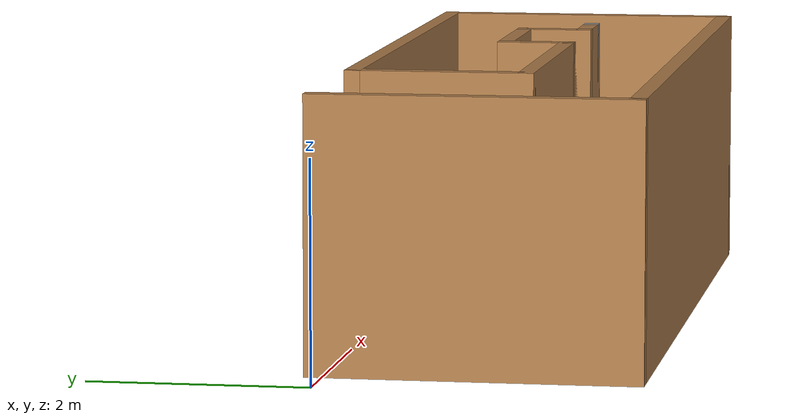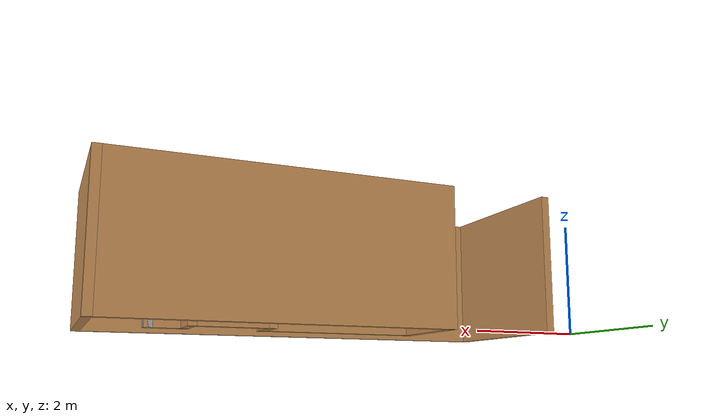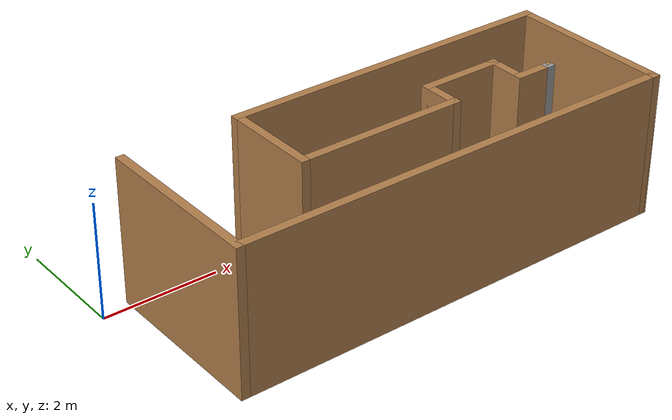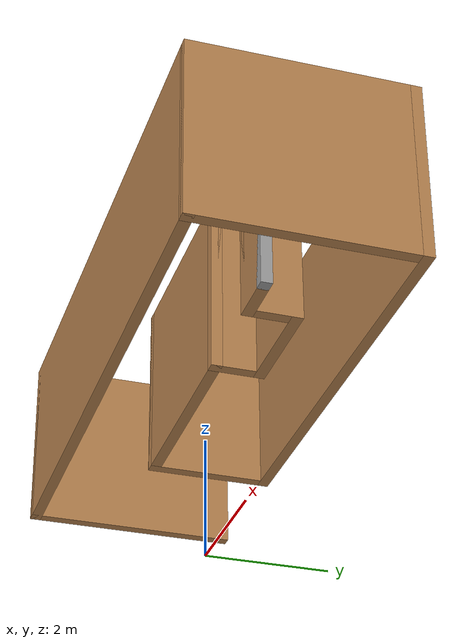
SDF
<?xml version='1.0'?>
<sdf version='1.7'>
  <model name='assignment_model'>
    <pose>4.24676 -1.34013 0 0 -0 0</pose>
    <link name='Wall_10'>
      <collision name='Wall_10_Collision'>
        <geometry>
          <box>
            <size>6 0.15 2.5</size>
          </box>
        </geometry>
        <pose>0 0 1.25 0 -0 0</pose>
      </collision>
      <visual name='Wall_10_Visual'>
        <pose>0 0 1.25 0 -0 0</pose>
        <geometry>
          <box>
            <size>6 0.15 2.5</size>
          </box>
        </geometry>
        <material>
          <script>
            <uri>file://media/materials/scripts/gazebo.material</uri>
            <name>Gazebo/Wood</name>
          </script>
          <ambient>1 1 1 1</ambient>
        </material>
        <meta>
          <layer>0</layer>
        </meta>
      </visual>
      <pose>1.24676 1.425 0 0 -0 3.14159</pose>
    </link>
    <link name='Wall_11'>
      <collision name='Wall_11_Collision'>
        <geometry>
          <box>
            <size>1.75 0.15 2.5</size>
          </box>
        </geometry>
        <pose>0 0 1.25 0 -0 0</pose>
      </collision>
      <visual name='Wall_11_Visual'>
        <pose>0 0 1.25 0 -0 0</pose>
        <geometry>
          <box>
            <size>1.75 0.15 2.5</size>
          </box>
        </geometry>
        <material>
          <script>
            <uri>file://media/materials/scripts/gazebo.material</uri>
            <name>Gazebo/Wood</name>
          </script>
          <ambient>1 1 1 1</ambient>
        </material>
        <meta>
          <layer>0</layer>
        </meta>
      </visual>
      <pose>-1.67824 0.625 0 0 -0 -1.5708</pose>
    </link>
    <link name='Wall_12'>
      <collision name='Wall_12_Collision'>
        <geometry>
          <box>
            <size>3 0.15 2.5</size>
          </box>
        </geometry>
        <pose>0 0 1.25 0 -0 0</pose>
      </collision>
      <visual name='Wall_12_Visual'>
        <pose>0 0 1.25 0 -0 0</pose>
        <geometry>
          <box>
            <size>3 0.15 2.5</size>
          </box>
        </geometry>
        <material>
          <script>
            <uri>file://media/materials/scripts/gazebo.material</uri>
            <name>Gazebo/Wood</name>
          </script>
          <ambient>1 1 1 1</ambient>
        </material>
        <meta>
          <layer>0</layer>
        </meta>
      </visual>
      <pose>-0.253238 -0.175 0 0 -0 0</pose>
    </link>
    <link name='Wall_13'>
      <collision name='Wall_13_Collision'>
        <geometry>
          <box>
            <size>0.75 0.15 2.5</size>
          </box>
        </geometry>
        <pose>0 0 1.25 0 -0 0</pose>
      </collision>
      <visual name='Wall_13_Visual'>
        <pose>0 0 1.25 0 -0 0</pose>
        <geometry>
          <box>
            <size>0.75 0.15 2.5</size>
          </box>
        </geometry>
        <material>
          <script>
            <uri>file://media/materials/scripts/gazebo.material</uri>
            <name>Gazebo/Wood</name>
          </script>
          <ambient>1 1 1 1</ambient>
        </material>
        <meta>
          <layer>0</layer>
        </meta>
      </visual>
      <pose>1.17176 0.125 0 0 -0 1.5708</pose>
    </link>
    <link name='Wall_14'>
      <collision name='Wall_14_Collision'>
        <geometry>
          <box>
            <size>1.5 0.15 2.5</size>
          </box>
        </geometry>
        <pose>0 0 1.25 0 -0 0</pose>
      </collision>
      <visual name='Wall_14_Visual'>
        <pose>0 0 1.25 0 -0 0</pose>
        <geometry>
          <box>
            <size>1.5 0.15 2.5</size>
          </box>
        </geometry>
        <material>
          <script>
            <uri>file://media/materials/scripts/gazebo.material</uri>
            <name>Gazebo/Wood</name>
          </script>
          <ambient>1 1 1 1</ambient>
        </material>
        <meta>
          <layer>0</layer>
        </meta>
      </visual>
      <pose>1.84676 0.425 0 0 -0 0</pose>
    </link>
    <link name='Wall_15'>
      <collision name='Wall_15_Collision'>
        <geometry>
          <box>
            <size>0.75 0.15 2.5</size>
          </box>
        </geometry>
        <pose>0 0 1.25 0 -0 0</pose>
      </collision>
      <visual name='Wall_15_Visual'>
        <pose>0 0 1.25 0 -0 0</pose>
        <geometry>
          <box>
            <size>0.75 0.15 2.5</size>
          </box>
        </geometry>
        <material>
          <script>
            <uri>file://media/materials/scripts/gazebo.material</uri>
            <name>Gazebo/Wood</name>
          </script>
          <ambient>1 1 1 1</ambient>
        </material>
        <meta>
          <layer>0</layer>
        </meta>
      </visual>
      <pose>2.52176 0.125 0 0 -0 -1.5708</pose>
    </link>
    <link name='Wall_16'>
      <collision name='Wall_16_Collision'>
        <geometry>
          <box>
            <size>0.75 0.15 2.5</size>
          </box>
        </geometry>
        <pose>0 0 1.25 0 -0 0</pose>
      </collision>
      <visual name='Wall_16_Visual'>
        <pose>0 0 1.25 0 -0 0</pose>
        <geometry>
          <box>
            <size>0.75 0.15 2.5</size>
          </box>
        </geometry>
        <material>
          <script>
            <uri>file://media/materials/scripts/gazebo.material</uri>
            <name>Gazebo/Wood</name>
          </script>
          <ambient>1 1 1 1</ambient>
        </material>
        <meta>
          <layer>0</layer>
        </meta>
      </visual>
      <pose>2.82176 -0.175 0 0 -0 0</pose>
    </link>
    <link name='Wall_17'>
      <collision name='Wall_17_Collision'>
        <geometry>
          <box>
            <size>0.16 0.15 2.5</size>
          </box>
        </geometry>
        <pose>0 0 1.25 0 -0 0</pose>
      </collision>
      <visual name='Wall_17_Visual'>
        <pose>0 0 1.25 0 -0 0</pose>
        <geometry>
          <box>
            <size>0.16 0.15 2.5</size>
          </box>
        </geometry>
        <material>
          <script>
            <uri>file://media/materials/scripts/gazebo.material</uri>
            <name>Gazebo/Grey</name>
          </script>
          <ambient>1 1 1 1</ambient>
        </material>
        <meta>
          <layer>0</layer>
        </meta>
      </visual>
      <pose>3.12676 -0.175 0 0 -0 0</pose>
    </link>
    <link name='Wall_7'>
      <collision name='Wall_7_Collision'>
        <geometry>
          <box>
            <size>3 0.15 2.5</size>
          </box>
        </geometry>
        <pose>0 0 1.25 0 -0 0</pose>
      </collision>
      <visual name='Wall_7_Visual'>
        <pose>0 0 1.25 0 -0 0</pose>
        <geometry>
          <box>
            <size>3 0.15 2.5</size>
          </box>
        </geometry>
        <material>
          <script>
            <uri>file://media/materials/scripts/gazebo.material</uri>
            <name>Gazebo/Wood</name>
          </script>
          <ambient>1 1 1 1</ambient>
        </material>
        <meta>
          <layer>0</layer>
        </meta>
      </visual>
      <pose>-3.67824 0 0 0 -0 -1.5708</pose>
    </link>
    <link name='Wall_8'>
      <collision name='Wall_8_Collision'>
        <geometry>
          <box>
            <size>8 0.15 2.5</size>
          </box>
        </geometry>
        <pose>0 0 1.25 0 -0 0</pose>
      </collision>
      <visual name='Wall_8_Visual'>
        <pose>0 0 1.25 0 -0 0</pose>
        <geometry>
          <box>
            <size>8 0.15 2.5</size>
          </box>
        </geometry>
        <material>
          <script>
            <uri>file://media/materials/scripts/gazebo.material</uri>
            <name>Gazebo/Wood</name>
          </script>
          <ambient>1 1 1 1</ambient>
        </material>
        <meta>
          <layer>0</layer>
        </meta>
      </visual>
      <pose>0.246761 -1.425 0 0 -0 0</pose>
    </link>
    <link name='Wall_9'>
      <collision name='Wall_9_Collision'>
        <geometry>
          <box>
            <size>3 0.15 2.5</size>
          </box>
        </geometry>
        <pose>0 0 1.25 0 -0 0</pose>
      </collision>
      <visual name='Wall_9_Visual'>
        <pose>0 0 1.25 0 -0 0</pose>
        <geometry>
          <box>
            <size>3 0.15 2.5</size>
          </box>
        </geometry>
        <material>
          <script>
            <uri>file://media/materials/scripts/gazebo.material</uri>
            <name>Gazebo/Wood</name>
          </script>
          <ambient>1 1 1 1</ambient>
        </material>
        <meta>
          <layer>0</layer>
        </meta>
      </visual>
      <pose>4.17176 0 0 0 -0 1.5708</pose>
    </link>
    <static>1</static>
  </model>
</sdf>
